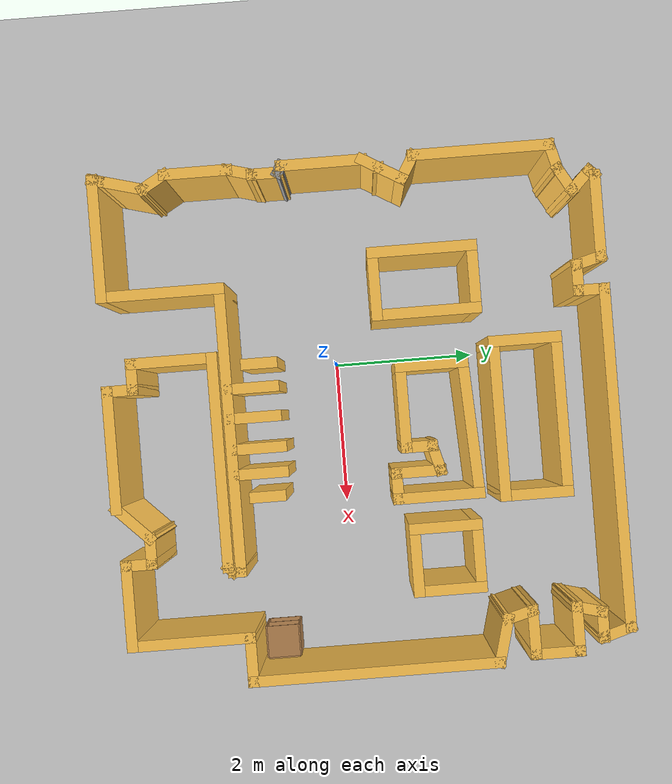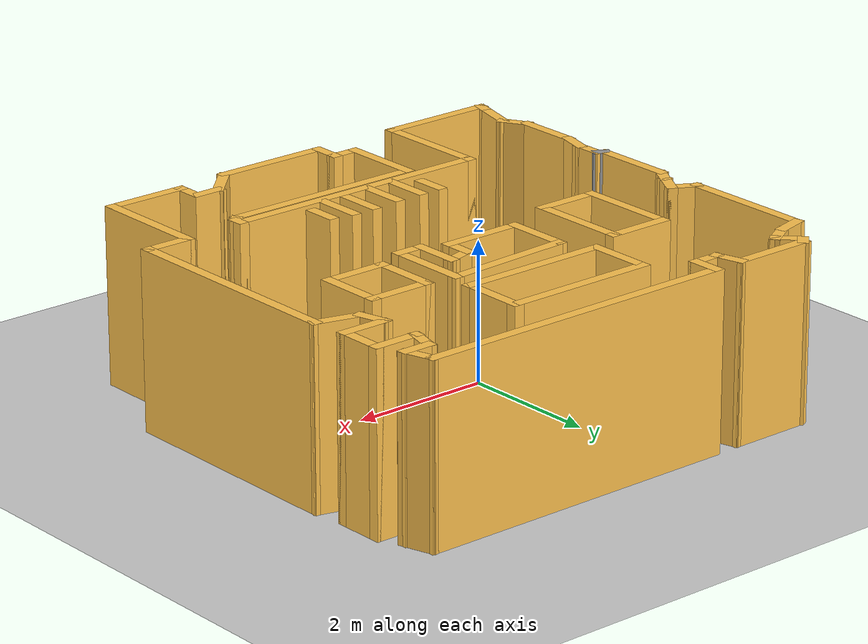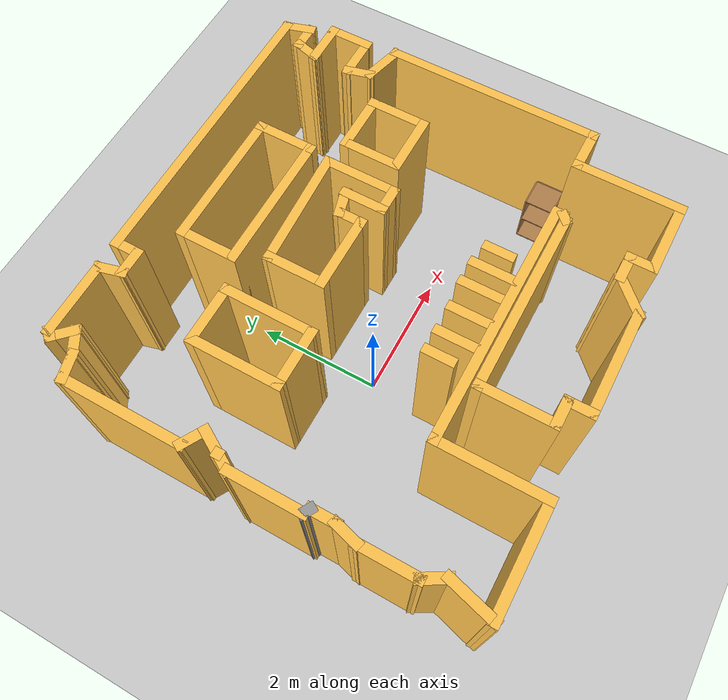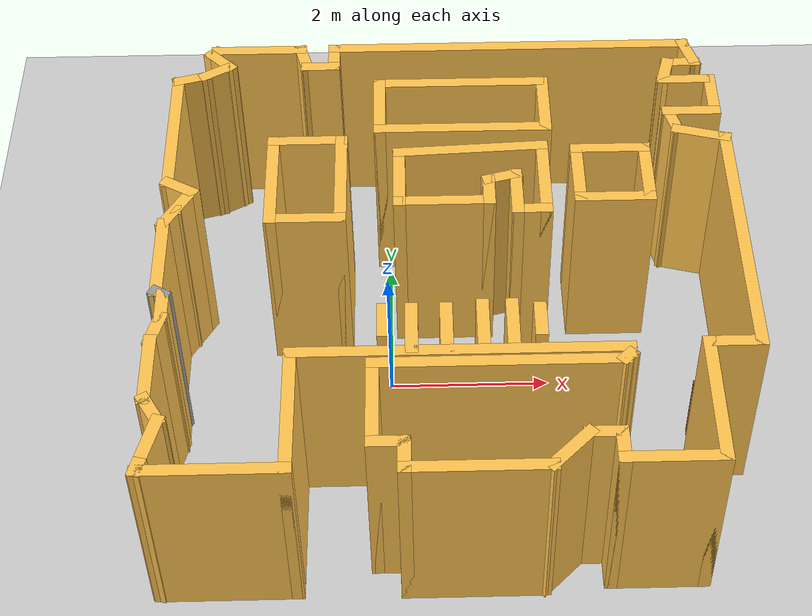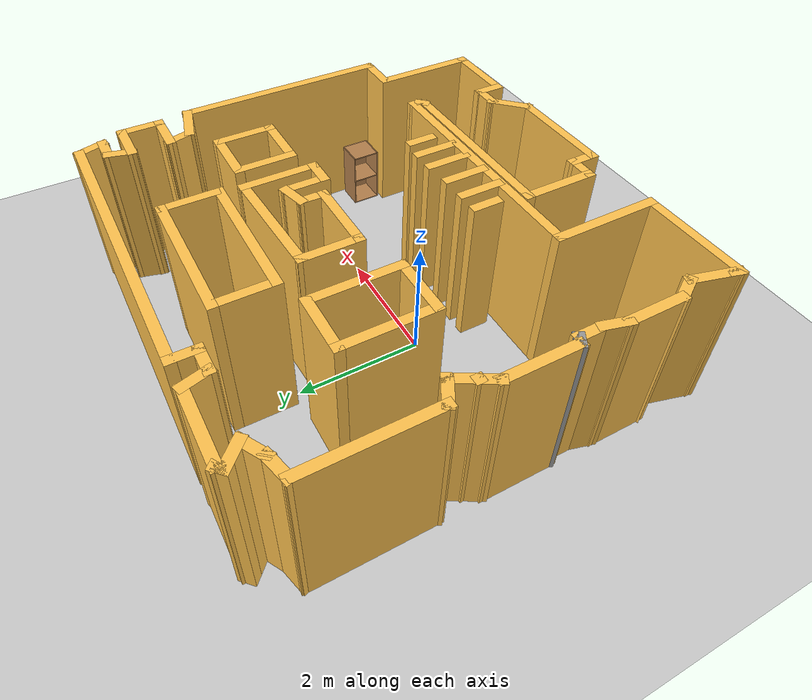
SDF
<sdf version="1.7">
 <world name="default">
  <light name="sun" type="directional">
   <pose>0 0 10 0 -0 0</pose>
   <diffuse>0.8 0.8 0.8 1</diffuse>
   <specular>0.2 0.2 0.2 1</specular>
   <attenuation>
    <range>1000</range>
    <constant>0.9</constant>
    <linear>0.01</linear>
    <quadratic>0.001</quadratic>
   </attenuation>
   <direction>-0.5 0.1 -0.9</direction>
   <spot><inner_angle>0</inner_angle><outer_angle>0</outer_angle><falloff>0</falloff></spot>
  </light>
  <model name="ground_plane">
   <static>1</static>
   <link name="link">
    <collision name="collision">
     <geometry><plane><normal>0 0 1</normal><size>100 100</size></plane></geometry>
     <surface>
      <contact><collide_bitmask>65535</collide_bitmask></contact>
      <friction><ode><mu>100</mu><mu2>50</mu2></ode></friction>
     </surface>
    </collision>
    <visual name="visual">
     <cast_shadows>0</cast_shadows>
     <geometry><plane><normal>0 0 1</normal><size>100 100</size></plane></geometry>
     <material>
      <script><uri>file://media/materials/scripts/gazebo.material</uri><name>Gazebo/Grey</name></script>
     </material>
    </visual>
   </link>
  </model>
  <gravity>0 0 -9.8</gravity>
  <magnetic_field>6e-06 2.3e-05 -4.2e-05</magnetic_field>
  <atmosphere type="adiabatic"/>
  <physics name="default_physics" default="0" type="ode">
   <max_step_size>0.001</max_step_size>
   <real_time_factor>1</real_time_factor>
   <real_time_update_rate>1000</real_time_update_rate>
  </physics>
  <scene><ambient>0.4 0.4 0.4 1</ambient><background>0.7 0.7 0.7 1</background><shadows>1</shadows></scene>
  <audio><device>default</device></audio>
  <spherical_coordinates>
   <surface_model>EARTH_WGS84</surface_model>
   <latitude_deg>0</latitude_deg>
   <longitude_deg>0</longitude_deg>
   <elevation>0</elevation>
   <heading_deg>0</heading_deg>
  </spherical_coordinates>
  <model name="map_6">
   <pose>0.773424 0.30314 0 0 -0 0</pose>
   <link name="Wall_0">
    <collision name="Wall_0_Collision">
     <geometry><box><size>4.75 0.15 2.5</size></box></geometry>
     <pose>0 0 1.25 0 -0 0</pose>
    </collision>
    <visual name="Wall_0_Visual">
     <pose>0 0 1.25 0 -0 0</pose>
     <geometry><box><size>4.75 0.15 2.5</size></box></geometry>
     <material>
      <script><uri>file://media/materials/scripts/gazebo.material</uri><name>Gazebo/Grey</name></script>
      <ambient>1 0.764706 0.305882 1</ambient>
     </material>
     <meta><layer>0</layer></meta>
    </visual>
    <pose>0.837476 3.42015 0 0 -0 3.14159</pose>
   </link>
   <link name="Wall_1">
    <collision name="Wall_1_Collision">
     <geometry><box><size>0.5 0.15 2.5</size></box></geometry>
     <pose>0 0 1.25 0 -0 0</pose>
    </collision>
    <visual name="Wall_1_Visual">
     <pose>0 0 1.25 0 -0 0</pose>
     <geometry><box><size>0.5 0.15 2.5</size></box></geometry>
     <material>
      <script><uri>file://media/materials/scripts/gazebo.material</uri><name>Gazebo/Grey</name></script>
      <ambient>1 0.764706 0.305882 1</ambient>
     </material>
     <meta><layer>0</layer></meta>
    </visual>
    <pose>-1.46252 3.24515 0 0 -0 -1.5708</pose>
   </link>
   <link name="Wall_10">
    <collision name="Wall_10_Collision">
     <geometry><box><size>0.5 0.15 2.5</size></box></geometry>
     <pose>0 0 1.25 0 -0 0</pose>
    </collision>
    <visual name="Wall_10_Visual">
     <pose>0 0 1.25 0 -0 0</pose>
     <geometry><box><size>0.5 0.15 2.5</size></box></geometry>
     <material>
      <script><uri>file://media/materials/scripts/gazebo.material</uri><name>Gazebo/Grey</name></script>
      <ambient>1 0.764706 0.305882 1</ambient>
     </material>
     <meta><layer>0</layer></meta>
    </visual>
    <pose>-3.31596 0.886936 0 0 -0 -0.523599</pose>
   </link>
   <link name="Wall_103">
    <collision name="Wall_103_Collision">
     <geometry><box><size>0.75 0.15 2.5</size></box></geometry>
     <pose>0 0 1.25 0 -0 0</pose>
    </collision>
    <visual name="Wall_103_Visual">
     <pose>0 0 1.25 0 -0 0</pose>
     <geometry><box><size>0.75 0.15 2.5</size></box></geometry>
     <material>
      <script><uri>file://media/materials/scripts/gazebo.material</uri><name>Gazebo/Grey</name></script>
      <ambient>1 0.764706 0.305882 1</ambient>
     </material>
     <meta><layer>0</layer></meta>
    </visual>
    <pose>0.668259 -1.40999 0 0 -0 -1.5708</pose>
   </link>
   <link name="Wall_106">
    <collision name="Wall_106_Collision">
     <geometry><box><size>0.75 0.15 2.5</size></box></geometry>
     <pose>0 0 1.25 0 -0 0</pose>
    </collision>
    <visual name="Wall_106_Visual">
     <pose>0 0 1.25 0 -0 0</pose>
     <geometry><box><size>0.75 0.15 2.5</size></box></geometry>
     <material>
      <script><uri>file://media/materials/scripts/gazebo.material</uri><name>Gazebo/Grey</name></script>
      <ambient>1 0.764706 0.305882 1</ambient>
     </material>
     <meta><layer>0</layer></meta>
    </visual>
    <pose>0.326328 -1.40999 0 0 -0 -1.5708</pose>
   </link>
   <link name="Wall_108">
    <collision name="Wall_108_Collision">
     <geometry><box><size>0.5 0.15 2.5</size></box></geometry>
     <pose>0 0 1.25 0 -0 0</pose>
    </collision>
    <visual name="Wall_108_Visual">
     <pose>0 0 1.25 0 -0 0</pose>
     <geometry><box><size>0.5 0.15 2.5</size></box></geometry>
     <material>
      <script><uri>file://media/materials/scripts/gazebo.material</uri><name>Gazebo/Grey</name></script>
      <ambient>1 0.764706 0.305882 1</ambient>
     </material>
     <meta><layer>0</layer></meta>
    </visual>
    <pose>0.990076 -1.34533 0 0 -0 -1.5708</pose>
   </link>
   <link name="Wall_12">
    <collision name="Wall_12_Collision">
     <geometry><box><size>0.15 0.15 2.5</size></box></geometry>
     <pose>0 0 1.25 0 -0 0</pose>
    </collision>
    <visual name="Wall_12_Visual">
     <pose>0 0 1.25 0 -0 0</pose>
     <geometry><box><size>0.15 0.15 2.5</size></box></geometry>
     <material>
      <script><uri>file://media/materials/scripts/gazebo.material</uri><name>Gazebo/Grey</name></script>
      <ambient>1 0.764706 0.305882 1</ambient>
     </material>
     <meta><layer>0</layer></meta>
    </visual>
    <pose>-3.33941 0.496327 0 0 -0 0</pose>
   </link>
   <link name="Wall_14">
    <collision name="Wall_14_Collision">
     <geometry><box><size>0.75 0.15 2.5</size></box></geometry>
     <pose>0 0 1.25 0 -0 0</pose>
    </collision>
    <visual name="Wall_14_Visual">
     <pose>0 0 1.25 0 -0 0</pose>
     <geometry><box><size>0.75 0.15 2.5</size></box></geometry>
     <material>
      <script><uri>file://media/materials/scripts/gazebo.material</uri><name>Gazebo/Grey</name></script>
      <ambient>1 0.764706 0.305882 1</ambient>
     </material>
     <meta><layer>0</layer></meta>
    </visual>
    <pose>-3.31441 0.539629 0 0 -0 -2.0944</pose>
   </link>
   <link name="Wall_15">
    <collision name="Wall_15_Collision">
     <geometry><box><size>1.25 0.15 2.5</size></box></geometry>
     <pose>0 0 1.25 0 -0 0</pose>
    </collision>
    <visual name="Wall_15_Visual">
     <pose>0 0 1.25 0 -0 0</pose>
     <geometry><box><size>1.25 0.15 2.5</size></box></geometry>
     <material>
      <script><uri>file://media/materials/scripts/gazebo.material</uri><name>Gazebo/Grey</name></script>
      <ambient>1 0.764706 0.305882 1</ambient>
     </material>
     <meta><layer>0</layer></meta>
    </visual>
    <pose>-3.46441 -0.270179 0 0 -0 -1.5708</pose>
   </link>
   <link name="Wall_16">
    <collision name="Wall_16_Collision">
     <geometry><box><size>0.25 0.15 2.5</size></box></geometry>
     <pose>0 0 1.25 0 -0 0</pose>
    </collision>
    <visual name="Wall_16_Visual">
     <pose>0 0 1.25 0 -0 0</pose>
     <geometry><box><size>0.25 0.15 2.5</size></box></geometry>
     <material>
      <script><uri>file://media/materials/scripts/gazebo.material</uri><name>Gazebo/Grey</name></script>
      <ambient>1 1 1 1</ambient>
     </material>
     <meta><layer>0</layer></meta>
    </visual>
    <pose>-3.42111 -0.845179 0 0 -0 -0.523599</pose>
   </link>
   <link name="Wall_17">
    <collision name="Wall_17_Collision">
     <geometry><box><size>0.5 0.15 2.5</size></box></geometry>
     <pose>0 0 1.25 0 -0 0</pose>
    </collision>
    <visual name="Wall_17_Visual">
     <pose>0 0 1.25 0 -0 0</pose>
     <geometry><box><size>0.5 0.15 2.5</size></box></geometry>
     <material>
      <script><uri>file://media/materials/scripts/gazebo.material</uri><name>Gazebo/Grey</name></script>
      <ambient>1 0.764706 0.305882 1</ambient>
     </material>
     <meta><layer>0</layer></meta>
    </visual>
    <pose>-3.3778 -1.04518 0 0 -0 -1.5708</pose>
   </link>
   <link name="Wall_18">
    <collision name="Wall_18_Collision">
     <geometry><box><size>0.5 0.15 2.5</size></box></geometry>
     <pose>0 0 1.25 0 -0 0</pose>
    </collision>
    <visual name="Wall_18_Visual">
     <pose>0 0 1.25 0 -0 0</pose>
     <geometry><box><size>0.5 0.15 2.5</size></box></geometry>
     <material>
      <script><uri>file://media/materials/scripts/gazebo.material</uri><name>Gazebo/Grey</name></script>
      <ambient>1 0.764706 0.305882 1</ambient>
     </material>
     <meta><layer>0</layer></meta>
    </visual>
    <pose>-3.4231 -1.38922 0 0 -0 -1.8326</pose>
   </link>
   <link name="Wall_19">
    <collision name="Wall_19_Collision">
     <geometry><box><size>1 0.15 2.5</size></box></geometry>
     <pose>0 0 1.25 0 -0 0</pose>
    </collision>
    <visual name="Wall_19_Visual">
     <pose>0 0 1.25 0 -0 0</pose>
     <geometry><box><size>1 0.15 2.5</size></box></geometry>
     <material>
      <script><uri>file://media/materials/scripts/gazebo.material</uri><name>Gazebo/Grey</name></script>
      <ambient>1 0.764706 0.305882 1</ambient>
     </material>
     <meta><layer>0</layer></meta>
    </visual>
    <pose>-3.46839 -1.98325 0 0 -0 -1.5708</pose>
   </link>
   <link name="Wall_2">
    <collision name="Wall_2_Collision">
     <geometry><box><size>0.5 0.15 2.5</size></box></geometry>
     <pose>0 0 1.25 0 -0 0</pose>
    </collision>
    <visual name="Wall_2_Visual">
     <pose>0 0 1.25 0 -0 0</pose>
     <geometry><box><size>0.5 0.15 2.5</size></box></geometry>
     <material>
      <script><uri>file://media/materials/scripts/gazebo.material</uri><name>Gazebo/Grey</name></script>
      <ambient>1 0.764706 0.305882 1</ambient>
     </material>
     <meta><layer>0</layer></meta>
    </visual>
    <pose>-1.63752 3.07015 0 0 -0 3.14159</pose>
   </link>
   <link name="Wall_20">
    <collision name="Wall_20_Collision">
     <geometry><box><size>0.5 0.15 2.5</size></box></geometry>
     <pose>0 0 1.25 0 -0 0</pose>
    </collision>
    <visual name="Wall_20_Visual">
     <pose>0 0 1.25 0 -0 0</pose>
     <geometry><box><size>0.5 0.15 2.5</size></box></geometry>
     <material>
      <script><uri>file://media/materials/scripts/gazebo.material</uri><name>Gazebo/Grey</name></script>
      <ambient>1 0.764706 0.305882 1</ambient>
     </material>
     <meta><layer>0</layer></meta>
    </visual>
    <pose>-3.38089 -2.55981 0 0 -0 -1.0472</pose>
   </link>
   <link name="Wall_21">
    <collision name="Wall_21_Collision">
     <geometry><box><size>0.75 0.15 2.5</size></box></geometry>
     <pose>0 0 1.25 0 -0 0</pose>
    </collision>
    <visual name="Wall_21_Visual">
     <pose>0 0 1.25 0 -0 0</pose>
     <geometry><box><size>0.75 0.15 2.5</size></box></geometry>
     <material>
      <script><uri>file://media/materials/scripts/gazebo.material</uri><name>Gazebo/Grey</name></script>
      <ambient>1 0.764706 0.305882 1</ambient>
     </material>
     <meta><layer>0</layer></meta>
    </visual>
    <pose>-3.37104 -3.00114 0 0 -0 -1.8326</pose>
   </link>
   <link name="Wall_22">
    <collision name="Wall_22_Collision">
     <geometry><box><size>0.25 0.15 2.5</size></box></geometry>
     <pose>0 0 1.25 0 -0 0</pose>
    </collision>
    <visual name="Wall_22_Visual">
     <pose>0 0 1.25 0 -0 0</pose>
     <geometry><box><size>0.25 0.15 2.5</size></box></geometry>
     <material>
      <script><uri>file://media/materials/scripts/gazebo.material</uri><name>Gazebo/Grey</name></script>
      <ambient>1 0.764706 0.305882 1</ambient>
     </material>
     <meta><layer>0</layer></meta>
    </visual>
    <pose>-3.46162 -3.33921 0 0 -0 -1.8326</pose>
   </link>
   <link name="Wall_23">
    <collision name="Wall_23_Collision">
     <geometry><box><size>1.75 0.15 2.5</size></box></geometry>
     <pose>0 0 1.25 0 -0 0</pose>
    </collision>
    <visual name="Wall_23_Visual">
     <pose>0 0 1.25 0 -0 0</pose>
     <geometry><box><size>1.75 0.15 2.5</size></box></geometry>
     <material>
      <script><uri>file://media/materials/scripts/gazebo.material</uri><name>Gazebo/Grey</name></script>
      <ambient>1 0.764706 0.305882 1</ambient>
     </material>
     <meta><layer>0</layer></meta>
    </visual>
    <pose>-2.67456 -3.38751 0 0 -0 0</pose>
   </link>
   <link name="Wall_3">
    <collision name="Wall_3_Collision">
     <geometry><box><size>0.5 0.15 2.5</size></box></geometry>
     <pose>0 0 1.25 0 -0 0</pose>
    </collision>
    <visual name="Wall_3_Visual">
     <pose>0 0 1.25 0 -0 0</pose>
     <geometry><box><size>0.5 0.15 2.5</size></box></geometry>
     <material>
      <script><uri>file://media/materials/scripts/gazebo.material</uri><name>Gazebo/Grey</name></script>
      <ambient>1 0.764706 0.305882 1</ambient>
     </material>
     <meta><layer>0</layer></meta>
    </visual>
    <pose>-1.85782 3.23918 0 0 -0 1.8326</pose>
   </link>
   <link name="Wall_4">
    <collision name="Wall_4_Collision">
     <geometry><box><size>1.25 0.15 2.5</size></box></geometry>
     <pose>0 0 1.25 0 -0 0</pose>
    </collision>
    <visual name="Wall_4_Visual">
     <pose>0 0 1.25 0 -0 0</pose>
     <geometry><box><size>1.25 0.15 2.5</size></box></geometry>
     <material>
      <script><uri>file://media/materials/scripts/gazebo.material</uri><name>Gazebo/Grey</name></script>
      <ambient>1 0.764706 0.305882 1</ambient>
     </material>
     <meta><layer>0</layer></meta>
    </visual>
    <pose>-2.45311 3.40822 0 0 -0 3.14159</pose>
   </link>
   <link name="Wall_40">
    <collision name="Wall_40_Collision">
     <geometry><box><size>1.75 0.15 2.5</size></box></geometry>
     <pose>0 0 1.25 0 -0 0</pose>
    </collision>
    <visual name="Wall_40_Visual">
     <pose>0 0 1.25 0 -0 0</pose>
     <geometry><box><size>1.75 0.15 2.5</size></box></geometry>
     <material>
      <script><uri>file://media/materials/scripts/gazebo.material</uri><name>Gazebo/Grey</name></script>
      <ambient>1 0.764706 0.305882 1</ambient>
     </material>
     <meta><layer>0</layer></meta>
    </visual>
    <pose>-1.87457 -2.58751 0 0 -0 1.5708</pose>
   </link>
   <link name="Wall_41">
    <collision name="Wall_41_Collision">
     <geometry><box><size>4 0.15 2.5</size></box></geometry>
     <pose>0 0 1.25 0 -0 0</pose>
    </collision>
    <visual name="Wall_41_Visual">
     <pose>0 0 1.25 0 -0 0</pose>
     <geometry><box><size>4 0.15 2.5</size></box></geometry>
     <material>
      <script><uri>file://media/materials/scripts/gazebo.material</uri><name>Gazebo/Grey</name></script>
      <ambient>1 0.764706 0.305882 1</ambient>
     </material>
     <meta><layer>0</layer></meta>
    </visual>
    <pose>0.050435 -1.78751 0 0 -0 0</pose>
   </link>
   <link name="Wall_44">
    <collision name="Wall_44_Collision">
     <geometry><box><size>0.25 0.15 2.5</size></box></geometry>
     <pose>0 0 1.25 0 -0 0</pose>
    </collision>
    <visual name="Wall_44_Visual">
     <pose>0 0 1.25 0 -0 0</pose>
     <geometry><box><size>0.25 0.15 2.5</size></box></geometry>
     <material>
      <script><uri>file://media/materials/scripts/gazebo.material</uri><name>Gazebo/Grey</name></script>
      <ambient>1 0.764706 0.305882 1</ambient>
     </material>
     <meta><layer>0</layer></meta>
    </visual>
    <pose>1.97544 -1.83751 0 0 -0 -1.5708</pose>
   </link>
   <link name="Wall_45">
    <collision name="Wall_45_Collision">
     <geometry><box><size>0.25 0.15 2.5</size></box></geometry>
     <pose>0 0 1.25 0 -0 0</pose>
    </collision>
    <visual name="Wall_45_Visual">
     <pose>0 0 1.25 0 -0 0</pose>
     <geometry><box><size>0.25 0.15 2.5</size></box></geometry>
     <material>
      <script><uri>file://media/materials/scripts/gazebo.material</uri><name>Gazebo/Grey</name></script>
      <ambient>1 0.764706 0.305882 1</ambient>
     </material>
     <meta><layer>0</layer></meta>
    </visual>
    <pose>1.94008 -1.92287 0 0 -0 -2.35619</pose>
   </link>
   <link name="Wall_46">
    <collision name="Wall_46_Collision">
     <geometry><box><size>3 0.15 2.5</size></box></geometry>
     <pose>0 0 1.25 0 -0 0</pose>
    </collision>
    <visual name="Wall_46_Visual">
     <pose>0 0 1.25 0 -0 0</pose>
     <geometry><box><size>3 0.15 2.5</size></box></geometry>
     <material>
      <script><uri>file://media/materials/scripts/gazebo.material</uri><name>Gazebo/Grey</name></script>
      <ambient>1 0.764706 0.305882 1</ambient>
     </material>
     <meta><layer>0</layer></meta>
    </visual>
    <pose>0.479724 -1.95822 0 0 -0 3.14159</pose>
   </link>
   <link name="Wall_47">
    <collision name="Wall_47_Collision">
     <geometry><box><size>1.25 0.15 2.5</size></box></geometry>
     <pose>0 0 1.25 0 -0 0</pose>
    </collision>
    <visual name="Wall_47_Visual">
     <pose>0 0 1.25 0 -0 0</pose>
     <geometry><box><size>1.25 0.15 2.5</size></box></geometry>
     <material>
      <script><uri>file://media/materials/scripts/gazebo.material</uri><name>Gazebo/Grey</name></script>
      <ambient>1 0.764706 0.305882 1</ambient>
     </material>
     <meta><layer>0</layer></meta>
    </visual>
    <pose>-0.945276 -2.50822 0 0 -0 -1.5708</pose>
   </link>
   <link name="Wall_48">
    <collision name="Wall_48_Collision">
     <geometry><box><size>0.5 0.15 2.5</size></box></geometry>
     <pose>0 0 1.25 0 -0 0</pose>
    </collision>
    <visual name="Wall_48_Visual">
     <pose>0 0 1.25 0 -0 0</pose>
     <geometry><box><size>0.5 0.15 2.5</size></box></geometry>
     <material>
      <script><uri>file://media/materials/scripts/gazebo.material</uri><name>Gazebo/Grey</name></script>
      <ambient>1 0.764706 0.305882 1</ambient>
     </material>
     <meta><layer>0</layer></meta>
    </visual>
    <pose>-0.770276 -3.05822 0 0 -0 0</pose>
   </link>
   <link name="Wall_49">
    <collision name="Wall_49_Collision">
     <geometry><box><size>0.5 0.15 2.5</size></box></geometry>
     <pose>0 0 1.25 0 -0 0</pose>
    </collision>
    <visual name="Wall_49_Visual">
     <pose>0 0 1.25 0 -0 0</pose>
     <geometry><box><size>0.5 0.15 2.5</size></box></geometry>
     <material>
      <script><uri>file://media/materials/scripts/gazebo.material</uri><name>Gazebo/Grey</name></script>
      <ambient>1 0.764706 0.305882 1</ambient>
     </material>
     <meta><layer>0</layer></meta>
    </visual>
    <pose>-0.595276 -3.23322 0 0 -0 -1.5708</pose>
   </link>
   <link name="Wall_5">
    <collision name="Wall_5_Collision">
     <geometry><box><size>0.25 0.15 2.5</size></box></geometry>
     <pose>0 0 1.25 0 -0 0</pose>
    </collision>
    <visual name="Wall_5_Visual">
     <pose>0 0 1.25 0 -0 0</pose>
     <geometry><box><size>0.25 0.15 2.5</size></box></geometry>
     <material>
      <script><uri>file://media/materials/scripts/gazebo.material</uri><name>Gazebo/Grey</name></script>
      <ambient>1 0.764706 0.305882 1</ambient>
     </material>
     <meta><layer>0</layer></meta>
    </visual>
    <pose>-3.03847 3.37287 0 0 -0 -2.35619</pose>
   </link>
   <link name="Wall_50">
    <collision name="Wall_50_Collision">
     <geometry><box><size>1.75 0.15 2.5</size></box></geometry>
     <pose>0 0 1.25 0 -0 0</pose>
    </collision>
    <visual name="Wall_50_Visual">
     <pose>0 0 1.25 0 -0 0</pose>
     <geometry><box><size>1.75 0.15 2.5</size></box></geometry>
     <material>
      <script><uri>file://media/materials/scripts/gazebo.material</uri><name>Gazebo/Grey</name></script>
      <ambient>1 0.764706 0.305882 1</ambient>
     </material>
     <meta><layer>0</layer></meta>
    </visual>
    <pose>0.204724 -3.40822 0 0 -0 0</pose>
   </link>
   <link name="Wall_51">
    <collision name="Wall_51_Collision">
     <geometry><box><size>0.75 0.15 2.5</size></box></geometry>
     <pose>0 0 1.25 0 -0 0</pose>
    </collision>
    <visual name="Wall_51_Visual">
     <pose>0 0 1.25 0 -0 0</pose>
     <geometry><box><size>0.75 0.15 2.5</size></box></geometry>
     <material>
      <script><uri>file://media/materials/scripts/gazebo.material</uri><name>Gazebo/Grey</name></script>
      <ambient>1 0.764706 0.305882 1</ambient>
     </material>
     <meta><layer>0</layer></meta>
    </visual>
    <pose>1.21686 -3.19609 0 0 -0 0.785398</pose>
   </link>
   <link name="Wall_52">
    <collision name="Wall_52_Collision">
     <geometry><box><size>0.5 0.15 2.5</size></box></geometry>
     <pose>0 0 1.25 0 -0 0</pose>
    </collision>
    <visual name="Wall_52_Visual">
     <pose>0 0 1.25 0 -0 0</pose>
     <geometry><box><size>0.5 0.15 2.5</size></box></geometry>
     <material>
      <script><uri>file://media/materials/scripts/gazebo.material</uri><name>Gazebo/Grey</name></script>
      <ambient>1 0.764706 0.305882 1</ambient>
     </material>
     <meta><layer>0</layer></meta>
    </visual>
    <pose>1.60399 -2.98396 0 0 -0 0</pose>
   </link>
   <link name="Wall_53">
    <collision name="Wall_53_Collision">
     <geometry><box><size>0.5 0.15 2.5</size></box></geometry>
     <pose>0 0 1.25 0 -0 0</pose>
    </collision>
    <visual name="Wall_53_Visual">
     <pose>0 0 1.25 0 -0 0</pose>
     <geometry><box><size>0.5 0.15 2.5</size></box></geometry>
     <material>
      <script><uri>file://media/materials/scripts/gazebo.material</uri><name>Gazebo/Grey</name></script>
      <ambient>1 0.764706 0.305882 1</ambient>
     </material>
     <meta><layer>0</layer></meta>
    </visual>
    <pose>1.77899 -3.15896 0 0 -0 -1.5708</pose>
   </link>
   <link name="Wall_54">
    <collision name="Wall_54_Collision">
     <geometry><box><size>1.25 0.15 2.5</size></box></geometry>
     <pose>0 0 1.25 0 -0 0</pose>
    </collision>
    <visual name="Wall_54_Visual">
     <pose>0 0 1.25 0 -0 0</pose>
     <geometry><box><size>1.25 0.15 2.5</size></box></geometry>
     <material>
      <script><uri>file://media/materials/scripts/gazebo.material</uri><name>Gazebo/Grey</name></script>
      <ambient>1 0.764706 0.305882 1</ambient>
     </material>
     <meta><layer>0</layer></meta>
    </visual>
    <pose>2.32899 -3.33396 0 0 -0 0</pose>
   </link>
   <link name="Wall_55">
    <collision name="Wall_55_Collision">
     <geometry><box><size>1.75 0.15 2.5</size></box></geometry>
     <pose>0 0 1.25 0 -0 0</pose>
    </collision>
    <visual name="Wall_55_Visual">
     <pose>0 0 1.25 0 -0 0</pose>
     <geometry><box><size>1.75 0.15 2.5</size></box></geometry>
     <material>
      <script><uri>file://media/materials/scripts/gazebo.material</uri><name>Gazebo/Grey</name></script>
      <ambient>1 0.764706 0.305882 1</ambient>
     </material>
     <meta><layer>0</layer></meta>
    </visual>
    <pose>2.87899 -2.53396 0 0 -0 1.5708</pose>
   </link>
   <link name="Wall_56">
    <collision name="Wall_56_Collision">
     <geometry><box><size>0.75 0.15 2.5</size></box></geometry>
     <pose>0 0 1.25 0 -0 0</pose>
    </collision>
    <visual name="Wall_56_Visual">
     <pose>0 0 1.25 0 -0 0</pose>
     <geometry><box><size>0.75 0.15 2.5</size></box></geometry>
     <material>
      <script><uri>file://media/materials/scripts/gazebo.material</uri><name>Gazebo/Grey</name></script>
      <ambient>1 0.764706 0.305882 1</ambient>
     </material>
     <meta><layer>0</layer></meta>
    </visual>
    <pose>3.17899 -1.73396 0 0 -0 0</pose>
   </link>
   <link name="Wall_57">
    <collision name="Wall_57_Collision">
     <geometry><box><size>3.5 0.15 2.5</size></box></geometry>
     <pose>0 0 1.25 0 -0 0</pose>
    </collision>
    <visual name="Wall_57_Visual">
     <pose>0 0 1.25 0 -0 0</pose>
     <geometry><box><size>3.5 0.15 2.5</size></box></geometry>
     <material>
      <script><uri>file://media/materials/scripts/gazebo.material</uri><name>Gazebo/Grey</name></script>
      <ambient>1 0.764706 0.305882 1</ambient>
     </material>
     <meta><layer>0</layer></meta>
    </visual>
    <pose>3.47899 -0.058957 0 0 -0 1.5708</pose>
   </link>
   <link name="Wall_58">
    <collision name="Wall_58_Collision">
     <geometry><box><size>0.75 0.15 2.5</size></box></geometry>
     <pose>0 0 1.25 0 -0 0</pose>
    </collision>
    <visual name="Wall_58_Visual">
     <pose>0 0 1.25 0 -0 0</pose>
     <geometry><box><size>0.75 0.15 2.5</size></box></geometry>
     <material>
      <script><uri>file://media/materials/scripts/gazebo.material</uri><name>Gazebo/Grey</name></script>
      <ambient>1 0.764706 0.305882 1</ambient>
     </material>
     <meta><layer>0</layer></meta>
    </visual>
    <pose>3.18921 1.69369 0 0 -0 2.87979</pose>
   </link>
   <link name="Wall_59">
    <collision name="Wall_59_Collision">
     <geometry><box><size>0.5 0.15 2.5</size></box></geometry>
     <pose>0 0 1.25 0 -0 0</pose>
    </collision>
    <visual name="Wall_59_Visual">
     <pose>0 0 1.25 0 -0 0</pose>
     <geometry><box><size>0.5 0.15 2.5</size></box></geometry>
     <material>
      <script><uri>file://media/materials/scripts/gazebo.material</uri><name>Gazebo/Grey</name></script>
      <ambient>1 0.764706 0.305882 1</ambient>
     </material>
     <meta><layer>0</layer></meta>
    </visual>
    <pose>2.85414 1.94037 0 0 -0 1.8326</pose>
   </link>
   <link name="Wall_6">
    <collision name="Wall_6_Collision">
     <geometry><box><size>0.5 0.15 2.5</size></box></geometry>
     <pose>0 0 1.25 0 -0 0</pose>
    </collision>
    <visual name="Wall_6_Visual">
     <pose>0 0 1.25 0 -0 0</pose>
     <geometry><box><size>0.5 0.15 2.5</size></box></geometry>
     <material>
      <script><uri>file://media/materials/scripts/gazebo.material</uri><name>Gazebo/Grey</name></script>
      <ambient>1 0.764706 0.305882 1</ambient>
     </material>
     <meta><layer>0</layer></meta>
    </visual>
    <pose>-2.95008 3.21377 0 0 -0 -0.785398</pose>
   </link>
   <link name="Wall_60">
    <collision name="Wall_60_Collision">
     <geometry><box><size>0.75 0.15 2.5</size></box></geometry>
     <pose>0 0 1.25 0 -0 0</pose>
    </collision>
    <visual name="Wall_60_Visual">
     <pose>0 0 1.25 0 -0 0</pose>
     <geometry><box><size>0.75 0.15 2.5</size></box></geometry>
     <material>
      <script><uri>file://media/materials/scripts/gazebo.material</uri><name>Gazebo/Grey</name></script>
      <ambient>1 0.764706 0.305882 1</ambient>
     </material>
     <meta><layer>0</layer></meta>
    </visual>
    <pose>3.10885 2.10941 0 0 -0 0</pose>
   </link>
   <link name="Wall_61">
    <collision name="Wall_61_Collision">
     <geometry><box><size>0.75 0.15 2.5</size></box></geometry>
     <pose>0 0 1.25 0 -0 0</pose>
    </collision>
    <visual name="Wall_61_Visual">
     <pose>0 0 1.25 0 -0 0</pose>
     <geometry><box><size>0.75 0.15 2.5</size></box></geometry>
     <material>
      <script><uri>file://media/materials/scripts/gazebo.material</uri><name>Gazebo/Grey</name></script>
      <ambient>1 0.764706 0.305882 1</ambient>
     </material>
     <meta><layer>0</layer></meta>
    </visual>
    <pose>3.40885 2.40941 0 0 -0 1.5708</pose>
   </link>
   <link name="Wall_62">
    <collision name="Wall_62_Collision">
     <geometry><box><size>0.75 0.15 2.5</size></box></geometry>
     <pose>0 0 1.25 0 -0 0</pose>
    </collision>
    <visual name="Wall_62_Visual">
     <pose>0 0 1.25 0 -0 0</pose>
     <geometry><box><size>0.75 0.15 2.5</size></box></geometry>
     <material>
      <script><uri>file://media/materials/scripts/gazebo.material</uri><name>Gazebo/Grey</name></script>
      <ambient>1 0.764706 0.305882 1</ambient>
     </material>
     <meta><layer>0</layer></meta>
    </visual>
    <pose>3.10885 2.70941 0 0 -0 3.14159</pose>
   </link>
   <link name="Wall_63">
    <collision name="Wall_63_Collision">
     <geometry><box><size>0.5 0.15 2.5</size></box></geometry>
     <pose>0 0 1.25 0 -0 0</pose>
    </collision>
    <visual name="Wall_63_Visual">
     <pose>0 0 1.25 0 -0 0</pose>
     <geometry><box><size>0.5 0.15 2.5</size></box></geometry>
     <material>
      <script><uri>file://media/materials/scripts/gazebo.material</uri><name>Gazebo/Grey</name></script>
      <ambient>1 0.764706 0.305882 1</ambient>
     </material>
     <meta><layer>0</layer></meta>
    </visual>
    <pose>2.85414 2.87845 0 0 -0 1.309</pose>
   </link>
   <link name="Wall_64">
    <collision name="Wall_64_Collision">
     <geometry><box><size>0.5 0.15 2.5</size></box></geometry>
     <pose>0 0 1.25 0 -0 0</pose>
    </collision>
    <visual name="Wall_64_Visual">
     <pose>0 0 1.25 0 -0 0</pose>
     <geometry><box><size>0.5 0.15 2.5</size></box></geometry>
     <material>
      <script><uri>file://media/materials/scripts/gazebo.material</uri><name>Gazebo/Grey</name></script>
      <ambient>1 0.764706 0.305882 1</ambient>
     </material>
     <meta><layer>0</layer></meta>
    </visual>
    <pose>3.07443 3.04748 0 0 -0 0</pose>
   </link>
   <link name="Wall_65">
    <collision name="Wall_65_Collision">
     <geometry><box><size>0.539118 0.15 2.5</size></box></geometry>
     <pose>0 0 1.25 0 -0 0</pose>
    </collision>
    <visual name="Wall_65_Visual">
     <pose>0 0 1.25 0 -0 0</pose>
     <geometry><box><size>0.539118 0.15 2.5</size></box></geometry>
     <material>
      <script><uri>file://media/materials/scripts/gazebo.material</uri><name>Gazebo/Grey</name></script>
      <ambient>1 0.764706 0.305882 1</ambient>
     </material>
     <meta><layer>0</layer></meta>
    </visual>
    <pose>3.19345 3.23381 0 0 -0 1.86264</pose>
   </link>
   <link name="Wall_67">
    <collision name="Wall_67_Collision">
     <geometry><box><size>1 0.15 2.5</size></box></geometry>
     <pose>0 0 1.25 0 -0 0</pose>
    </collision>
    <visual name="Wall_67_Visual">
     <pose>0 0 1.25 0 -0 0</pose>
     <geometry><box><size>1 0.15 2.5</size></box></geometry>
     <material>
      <script><uri>file://media/materials/scripts/gazebo.material</uri><name>Gazebo/Grey</name></script>
      <ambient>1 0.764706 0.305882 1</ambient>
     </material>
     <meta><layer>0</layer></meta>
    </visual>
    <pose>-0.865125 2.29117 0 0 -0 -1.5708</pose>
   </link>
   <link name="Wall_68">
    <collision name="Wall_68_Collision">
     <geometry><box><size>2.25 0.15 2.5</size></box></geometry>
     <pose>0 0 1.25 0 -0 0</pose>
    </collision>
    <visual name="Wall_68_Visual">
     <pose>0 0 1.25 0 -0 0</pose>
     <geometry><box><size>2.25 0.15 2.5</size></box></geometry>
     <material>
      <script><uri>file://media/materials/scripts/gazebo.material</uri><name>Gazebo/Grey</name></script>
      <ambient>1 0.764706 0.305882 1</ambient>
     </material>
     <meta><layer>0</layer></meta>
    </visual>
    <pose>0.184875 1.86617 0 0 -0 0</pose>
   </link>
   <link name="Wall_69">
    <collision name="Wall_69_Collision">
     <geometry><box><size>1 0.15 2.5</size></box></geometry>
     <pose>0 0 1.25 0 -0 0</pose>
    </collision>
    <visual name="Wall_69_Visual">
     <pose>0 0 1.25 0 -0 0</pose>
     <geometry><box><size>1 0.15 2.5</size></box></geometry>
     <material>
      <script><uri>file://media/materials/scripts/gazebo.material</uri><name>Gazebo/Grey</name></script>
      <ambient>1 0.764706 0.305882 1</ambient>
     </material>
     <meta><layer>0</layer></meta>
    </visual>
    <pose>1.23487 2.29117 0 0 -0 1.5708</pose>
   </link>
   <link name="Wall_7">
    <collision name="Wall_7_Collision">
     <geometry><box><size>0.5 0.15 2.5</size></box></geometry>
     <pose>0 0 1.25 0 -0 0</pose>
    </collision>
    <visual name="Wall_7_Visual">
     <pose>0 0 1.25 0 -0 0</pose>
     <geometry><box><size>0.5 0.15 2.5</size></box></geometry>
     <material>
      <script><uri>file://media/materials/scripts/gazebo.material</uri><name>Gazebo/Grey</name></script>
      <ambient>1 0.764706 0.305882 1</ambient>
     </material>
     <meta><layer>0</layer></meta>
    </visual>
    <pose>-2.97789 3.00252 0 0 -0 -2.61799</pose>
   </link>
   <link name="Wall_70">
    <collision name="Wall_70_Collision">
     <geometry><box><size>2.25 0.15 2.5</size></box></geometry>
     <pose>0 0 1.25 0 -0 0</pose>
    </collision>
    <visual name="Wall_70_Visual">
     <pose>0 0 1.25 0 -0 0</pose>
     <geometry><box><size>2.25 0.15 2.5</size></box></geometry>
     <material>
      <script><uri>file://media/materials/scripts/gazebo.material</uri><name>Gazebo/Grey</name></script>
      <ambient>1 0.764706 0.305882 1</ambient>
     </material>
     <meta><layer>0</layer></meta>
    </visual>
    <pose>0.184875 2.71617 0 0 -0 3.14159</pose>
   </link>
   <link name="Wall_72">
    <collision name="Wall_72_Collision">
     <geometry><box><size>1.5 0.15 2.5</size></box></geometry>
     <pose>0 0 1.25 0 -0 0</pose>
    </collision>
    <visual name="Wall_72_Visual">
     <pose>0 0 1.25 0 -0 0</pose>
     <geometry><box><size>1.5 0.15 2.5</size></box></geometry>
     <material>
      <script><uri>file://media/materials/scripts/gazebo.material</uri><name>Gazebo/Grey</name></script>
      <ambient>1 0.764706 0.305882 1</ambient>
     </material>
     <meta><layer>0</layer></meta>
    </visual>
    <pose>-2.19262 0.995266 0 0 -0 -1.5708</pose>
   </link>
   <link name="Wall_73">
    <collision name="Wall_73_Collision">
     <geometry><box><size>1 0.15 2.5</size></box></geometry>
     <pose>0 0 1.25 0 -0 0</pose>
    </collision>
    <visual name="Wall_73_Visual">
     <pose>0 0 1.25 0 -0 0</pose>
     <geometry><box><size>1 0.15 2.5</size></box></geometry>
     <material>
      <script><uri>file://media/materials/scripts/gazebo.material</uri><name>Gazebo/Grey</name></script>
      <ambient>1 0.764706 0.305882 1</ambient>
     </material>
     <meta><layer>0</layer></meta>
    </visual>
    <pose>-1.76762 0.320266 0 0 -0 0</pose>
   </link>
   <link name="Wall_74">
    <collision name="Wall_74_Collision">
     <geometry><box><size>1.5 0.15 2.5</size></box></geometry>
     <pose>0 0 1.25 0 -0 0</pose>
    </collision>
    <visual name="Wall_74_Visual">
     <pose>0 0 1.25 0 -0 0</pose>
     <geometry><box><size>1.5 0.15 2.5</size></box></geometry>
     <material>
      <script><uri>file://media/materials/scripts/gazebo.material</uri><name>Gazebo/Grey</name></script>
      <ambient>1 0.764706 0.305882 1</ambient>
     </material>
     <meta><layer>0</layer></meta>
    </visual>
    <pose>-1.34262 0.995266 0 0 -0 1.5708</pose>
   </link>
   <link name="Wall_75">
    <collision name="Wall_75_Collision">
     <geometry><box><size>1 0.15 2.5</size></box></geometry>
     <pose>0 0 1.25 0 -0 0</pose>
    </collision>
    <visual name="Wall_75_Visual">
     <pose>0 0 1.25 0 -0 0</pose>
     <geometry><box><size>1 0.15 2.5</size></box></geometry>
     <material>
      <script><uri>file://media/materials/scripts/gazebo.material</uri><name>Gazebo/Grey</name></script>
      <ambient>1 0.764706 0.305882 1</ambient>
     </material>
     <meta><layer>0</layer></meta>
    </visual>
    <pose>-1.76762 1.67027 0 0 -0 3.14159</pose>
   </link>
   <link name="Wall_77">
    <collision name="Wall_77_Collision">
     <geometry><box><size>1 0.15 2.5</size></box></geometry>
     <pose>0 0 1.25 0 -0 0</pose>
    </collision>
    <visual name="Wall_77_Visual">
     <pose>0 0 1.25 0 -0 0</pose>
     <geometry><box><size>1 0.15 2.5</size></box></geometry>
     <material>
      <script><uri>file://media/materials/scripts/gazebo.material</uri><name>Gazebo/Grey</name></script>
      <ambient>1 0.764706 0.305882 1</ambient>
     </material>
     <meta><layer>0</layer></meta>
    </visual>
    <pose>-0.623762 1.0039 0 0 -0 -1.5708</pose>
   </link>
   <link name="Wall_78">
    <collision name="Wall_78_Collision">
     <geometry><box><size>1.25 0.15 2.5</size></box></geometry>
     <pose>0 0 1.25 0 -0 0</pose>
    </collision>
    <visual name="Wall_78_Visual">
     <pose>0 0 1.25 0 -0 0</pose>
     <geometry><box><size>1.25 0.15 2.5</size></box></geometry>
     <material>
      <script><uri>file://media/materials/scripts/gazebo.material</uri><name>Gazebo/Grey</name></script>
      <ambient>1 0.764706 0.305882 1</ambient>
     </material>
     <meta><layer>0</layer></meta>
    </visual>
    <pose>-0.073762 0.578903 0 0 -0 0</pose>
   </link>
   <link name="Wall_79">
    <collision name="Wall_79_Collision">
     <geometry><box><size>0.5 0.15 2.5</size></box></geometry>
     <pose>0 0 1.25 0 -0 0</pose>
    </collision>
    <visual name="Wall_79_Visual">
     <pose>0 0 1.25 0 -0 0</pose>
     <geometry><box><size>0.5 0.15 2.5</size></box></geometry>
     <material>
      <script><uri>file://media/materials/scripts/gazebo.material</uri><name>Gazebo/Grey</name></script>
      <ambient>1 0.764706 0.305882 1</ambient>
     </material>
     <meta><layer>0</layer></meta>
    </visual>
    <pose>0.476238 0.753903 0 0 -0 1.5708</pose>
   </link>
   <link name="Wall_8">
    <collision name="Wall_8_Collision">
     <geometry><box><size>0.5 0.15 2.5</size></box></geometry>
     <pose>0 0 1.25 0 -0 0</pose>
    </collision>
    <visual name="Wall_8_Visual">
     <pose>0 0 1.25 0 -0 0</pose>
     <geometry><box><size>0.5 0.15 2.5</size></box></geometry>
     <material>
      <script><uri>file://media/materials/scripts/gazebo.material</uri><name>Gazebo/Grey</name></script>
      <ambient>1 0.764706 0.305882 1</ambient>
     </material>
     <meta><layer>0</layer></meta>
    </visual>
    <pose>-3.29848 2.86973 0 0 -0 -2.87979</pose>
   </link>
   <link name="Wall_80">
    <collision name="Wall_80_Collision">
     <geometry><box><size>0.5 0.15 2.5</size></box></geometry>
     <pose>0 0 1.25 0 -0 0</pose>
    </collision>
    <visual name="Wall_80_Visual">
     <pose>0 0 1.25 0 -0 0</pose>
     <geometry><box><size>0.5 0.15 2.5</size></box></geometry>
     <material>
      <script><uri>file://media/materials/scripts/gazebo.material</uri><name>Gazebo/Grey</name></script>
      <ambient>1 0.764706 0.305882 1</ambient>
     </material>
     <meta><layer>0</layer></meta>
    </visual>
    <pose>0.645275 0.974197 0 0 -0 0.261799</pose>
   </link>
   <link name="Wall_81">
    <collision name="Wall_81_Collision">
     <geometry><box><size>0.75 0.15 2.5</size></box></geometry>
     <pose>0 0 1.25 0 -0 0</pose>
    </collision>
    <visual name="Wall_81_Visual">
     <pose>0 0 1.25 0 -0 0</pose>
     <geometry><box><size>0.75 0.15 2.5</size></box></geometry>
     <material>
      <script><uri>file://media/materials/scripts/gazebo.material</uri><name>Gazebo/Grey</name></script>
      <ambient>1 0.764706 0.305882 1</ambient>
     </material>
     <meta><layer>0</layer></meta>
    </visual>
    <pose>0.814312 0.71949 0 0 -0 -1.5708</pose>
   </link>
   <link name="Wall_82">
    <collision name="Wall_82_Collision">
     <geometry><box><size>0.5 0.15 2.5</size></box></geometry>
     <pose>0 0 1.25 0 -0 0</pose>
    </collision>
    <visual name="Wall_82_Visual">
     <pose>0 0 1.25 0 -0 0</pose>
     <geometry><box><size>0.5 0.15 2.5</size></box></geometry>
     <material>
      <script><uri>file://media/materials/scripts/gazebo.material</uri><name>Gazebo/Grey</name></script>
      <ambient>1 0.764706 0.305882 1</ambient>
     </material>
     <meta><layer>0</layer></meta>
    </visual>
    <pose>0.989312 0.41949 0 0 -0 0</pose>
   </link>
   <link name="Wall_85">
    <collision name="Wall_85_Collision">
     <geometry><box><size>1.25 0.15 2.5</size></box></geometry>
     <pose>0 0 1.25 0 -0 0</pose>
    </collision>
    <visual name="Wall_85_Visual">
     <pose>0 0 1.25 0 -0 0</pose>
     <geometry><box><size>1.25 0.15 2.5</size></box></geometry>
     <material>
      <script><uri>file://media/materials/scripts/gazebo.material</uri><name>Gazebo/Grey</name></script>
      <ambient>1 0.764706 0.305882 1</ambient>
     </material>
     <meta><layer>0</layer></meta>
    </visual>
    <pose>1.16431 0.96949 0 0 -0 1.5708</pose>
   </link>
   <link name="Wall_86">
    <collision name="Wall_86_Collision">
     <geometry><box><size>1.94037 0.15 2.5</size></box></geometry>
     <pose>0 0 1.25 0 -0 0</pose>
    </collision>
    <visual name="Wall_86_Visual">
     <pose>0 0 1.25 0 -0 0</pose>
     <geometry><box><size>1.94037 0.15 2.5</size></box></geometry>
     <material>
      <script><uri>file://media/materials/scripts/gazebo.material</uri><name>Gazebo/Grey</name></script>
      <ambient>1 0.764706 0.305882 1</ambient>
     </material>
     <meta><layer>0</layer></meta>
    </visual>
    <pose>0.270275 1.4742 0 0 -0 -3.09097</pose>
   </link>
   <link name="Wall_88">
    <collision name="Wall_88_Collision">
     <geometry><box><size>1 0.15 2.5</size></box></geometry>
     <pose>0 0 1.25 0 -0 0</pose>
    </collision>
    <visual name="Wall_88_Visual">
     <pose>0 0 1.25 0 -0 0</pose>
     <geometry><box><size>1 0.15 2.5</size></box></geometry>
     <material>
      <script><uri>file://media/materials/scripts/gazebo.material</uri><name>Gazebo/Grey</name></script>
      <ambient>1 0.764706 0.305882 1</ambient>
     </material>
     <meta><layer>0</layer></meta>
    </visual>
    <pose>1.58873 1.02402 0 0 -0 -1.5708</pose>
   </link>
   <link name="Wall_89">
    <collision name="Wall_89_Collision">
     <geometry><box><size>1 0.15 2.5</size></box></geometry>
     <pose>0 0 1.25 0 -0 0</pose>
    </collision>
    <visual name="Wall_89_Visual">
     <pose>0 0 1.25 0 -0 0</pose>
     <geometry><box><size>1 0.15 2.5</size></box></geometry>
     <material>
      <script><uri>file://media/materials/scripts/gazebo.material</uri><name>Gazebo/Grey</name></script>
      <ambient>1 0.764706 0.305882 1</ambient>
     </material>
     <meta><layer>0</layer></meta>
    </visual>
    <pose>2.01373 0.599017 0 0 -0 0</pose>
   </link>
   <link name="Wall_9">
    <collision name="Wall_9_Collision">
     <geometry><box><size>2 0.15 2.5</size></box></geometry>
     <pose>0 0 1.25 0 -0 0</pose>
    </collision>
    <visual name="Wall_9_Visual">
     <pose>0 0 1.25 0 -0 0</pose>
     <geometry><box><size>2 0.15 2.5</size></box></geometry>
     <material>
      <script><uri>file://media/materials/scripts/gazebo.material</uri><name>Gazebo/Grey</name></script>
      <ambient>1 0.764706 0.305882 1</ambient>
     </material>
     <meta><layer>0</layer></meta>
    </visual>
    <pose>-3.46752 1.89944 0 0 -0 -1.5708</pose>
   </link>
   <link name="Wall_90">
    <collision name="Wall_90_Collision">
     <geometry><box><size>1 0.15 2.5</size></box></geometry>
     <pose>0 0 1.25 0 -0 0</pose>
    </collision>
    <visual name="Wall_90_Visual">
     <pose>0 0 1.25 0 -0 0</pose>
     <geometry><box><size>1 0.15 2.5</size></box></geometry>
     <material>
      <script><uri>file://media/materials/scripts/gazebo.material</uri><name>Gazebo/Grey</name></script>
      <ambient>1 0.764706 0.305882 1</ambient>
     </material>
     <meta><layer>0</layer></meta>
    </visual>
    <pose>2.43873 1.02402 0 0 -0 1.5708</pose>
   </link>
   <link name="Wall_91">
    <collision name="Wall_91_Collision">
     <geometry><box><size>1 0.15 2.5</size></box></geometry>
     <pose>0 0 1.25 0 -0 0</pose>
    </collision>
    <visual name="Wall_91_Visual">
     <pose>0 0 1.25 0 -0 0</pose>
     <geometry><box><size>1 0.15 2.5</size></box></geometry>
     <material>
      <script><uri>file://media/materials/scripts/gazebo.material</uri><name>Gazebo/Grey</name></script>
      <ambient>1 0.764706 0.305882 1</ambient>
     </material>
     <meta><layer>0</layer></meta>
    </visual>
    <pose>2.01373 1.44902 0 0 -0 3.14159</pose>
   </link>
   <link name="Wall_95">
    <collision name="Wall_95_Collision">
     <geometry><box><size>0.75 0.15 2.5</size></box></geometry>
     <pose>0 0 1.25 0 -0 0</pose>
    </collision>
    <visual name="Wall_95_Visual">
     <pose>0 0 1.25 0 -0 0</pose>
     <geometry><box><size>0.75 0.15 2.5</size></box></geometry>
     <material>
      <script><uri>file://media/materials/scripts/gazebo.material</uri><name>Gazebo/Grey</name></script>
      <ambient>1 0.764706 0.305882 1</ambient>
     </material>
     <meta><layer>0</layer></meta>
    </visual>
    <pose>-0.498328 -1.45022 0 0 -0 -1.5708</pose>
   </link>
   <link name="Wall_97">
    <collision name="Wall_97_Collision">
     <geometry><box><size>0.5 0.15 2.5</size></box></geometry>
     <pose>0 0 1.25 0 -0 0</pose>
    </collision>
    <visual name="Wall_97_Visual">
     <pose>0 0 1.25 0 -0 0</pose>
     <geometry><box><size>0.5 0.15 2.5</size></box></geometry>
     <material>
      <script><uri>file://media/materials/scripts/gazebo.material</uri><name>Gazebo/Grey</name></script>
      <ambient>1 0.764706 0.305882 1</ambient>
     </material>
     <meta><layer>0</layer></meta>
    </visual>
    <pose>-0.820145 -1.32522 0 0 -0 -1.5708</pose>
   </link>
   <link name="Wall_99">
    <collision name="Wall_99_Collision">
     <geometry><box><size>0.75 0.15 2.5</size></box></geometry>
     <pose>0 0 1.25 0 -0 0</pose>
    </collision>
    <visual name="Wall_99_Visual">
     <pose>0 0 1.25 0 -0 0</pose>
     <geometry><box><size>0.75 0.15 2.5</size></box></geometry>
     <material>
      <script><uri>file://media/materials/scripts/gazebo.material</uri><name>Gazebo/Grey</name></script>
      <ambient>1 0.764706 0.305882 1</ambient>
     </material>
     <meta><layer>0</layer></meta>
    </visual>
    <pose>-0.096057 -1.45022 0 0 -0 -1.5708</pose>
   </link>
   <static>1</static>
  </model>
  <model name="cabinet">
   <static>1</static>
   <link name="cabinet_bottom_plate">
    <inertial>
     <pose>0 0 -1 0 -0 0</pose>
     <inertia><ixx>2.05</ixx><ixy>0</ixy><ixz>0</ixz><iyy>2.05</iyy><iyz>0</iyz><izz>2.05</izz></inertia>
     <mass>25</mass>
    </inertial>
    <collision name="cabinet_bottom_plate_geom">
     <pose>0 0 0.01 0 -0 0</pose>
     <geometry><box><size>0.45 0.45 0.02</size></box></geometry>
    </collision>
    <visual name="cabinet_bottom_plate_geom_visual">
     <pose>0 0 0.01 0 -0 0</pose>
     <geometry><box><size>0.45 0.45 0.02</size></box></geometry>
     <material>
      <script><uri>file://media/materials/scripts/gazebo.material</uri><name>Gazebo/Wood</name></script>
     </material>
    </visual>
    <collision name="cabinet_bottom_plate_geom_cabinet_back_plate">
     <pose>0.235 0 0.51 0 -0 0</pose>
     <geometry><box><size>0.02 0.45 1.02</size></box></geometry>
    </collision>
    <visual name="cabinet_bottom_plate_geom_cabinet_back_plate_visual">
     <pose>0.235 0 0.51 0 -0 0</pose>
     <geometry><box><size>0.02 0.45 1.02</size></box></geometry>
     <material>
      <script><uri>file://media/materials/scripts/gazebo.material</uri><name>Gazebo/Wood</name></script>
     </material>
    </visual>
    <collision name="cabinet_bottom_plate_geom_cabinet_left_plate">
     <pose>0 0.235 0.51 0 -0 0</pose>
     <geometry><box><size>0.45 0.02 1.02</size></box></geometry>
    </collision>
    <visual name="cabinet_bottom_plate_geom_cabinet_left_plate_visual">
     <pose>0 0.235 0.51 0 -0 0</pose>
     <geometry><box><size>0.45 0.02 1.02</size></box></geometry>
     <material>
      <script><uri>file://media/materials/scripts/gazebo.material</uri><name>Gazebo/Wood</name></script>
     </material>
    </visual>
    <collision name="cabinet_bottom_plate_geom_cabinet_middle_plate">
     <pose>0 0 0.51 0 -0 0</pose>
     <geometry><box><size>0.45 0.45 0.02</size></box></geometry>
    </collision>
    <visual name="cabinet_bottom_plate_geom_cabinet_middle_plate_visual">
     <pose>0 0 0.51 0 -0 0</pose>
     <geometry><box><size>0.45 0.45 0.02</size></box></geometry>
     <material>
      <script><uri>file://media/materials/scripts/gazebo.material</uri><name>Gazebo/Wood</name></script>
     </material>
    </visual>
    <collision name="cabinet_bottom_plate_geom_cabinet_right_plate">
     <pose>0 -0.235 0.51 0 -0 0</pose>
     <geometry><box><size>0.45 0.02 1.02</size></box></geometry>
    </collision>
    <visual name="cabinet_bottom_plate_geom_cabinet_right_plate_visual">
     <pose>0 -0.235 0.51 0 -0 0</pose>
     <geometry><box><size>0.45 0.02 1.02</size></box></geometry>
     <material>
      <script><uri>file://media/materials/scripts/gazebo.material</uri><name>Gazebo/Wood</name></script>
     </material>
    </visual>
    <collision name="cabinet_bottom_plate_geom_cabinet_top_plate">
     <pose>0 0 1.01 0 -0 0</pose>
     <geometry><box><size>0.45 0.45 0.02</size></box></geometry>
    </collision>
    <visual name="cabinet_bottom_plate_geom_cabinet_top_plate_visual">
     <pose>0 0 1.01 0 -0 0</pose>
     <geometry><box><size>0.45 0.45 0.02</size></box></geometry>
     <material>
      <script><uri>file://media/materials/scripts/gazebo.material</uri><name>Gazebo/Wood</name></script>
     </material>
    </visual>
   </link>
   <pose>3.91401 -1.06272 0 0 -0 0</pose>
  </model>
 </world>
</sdf>
